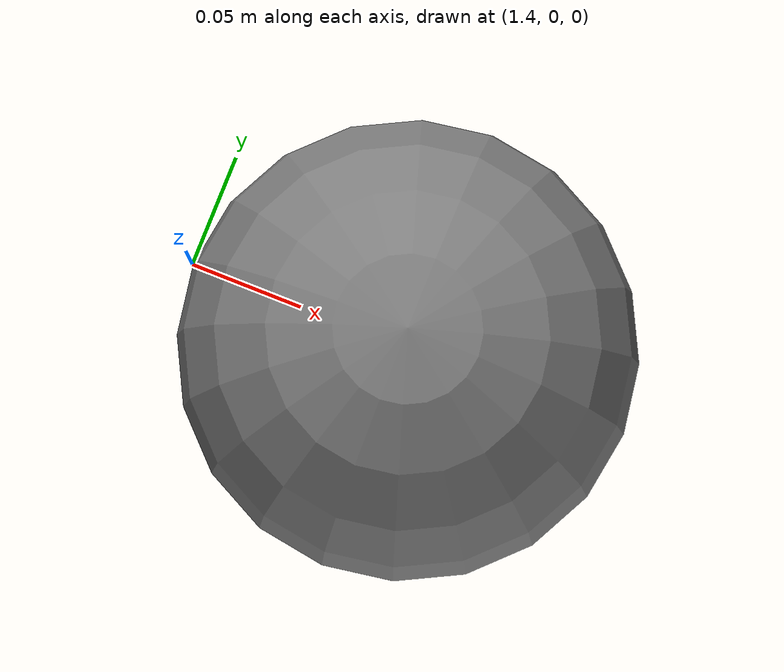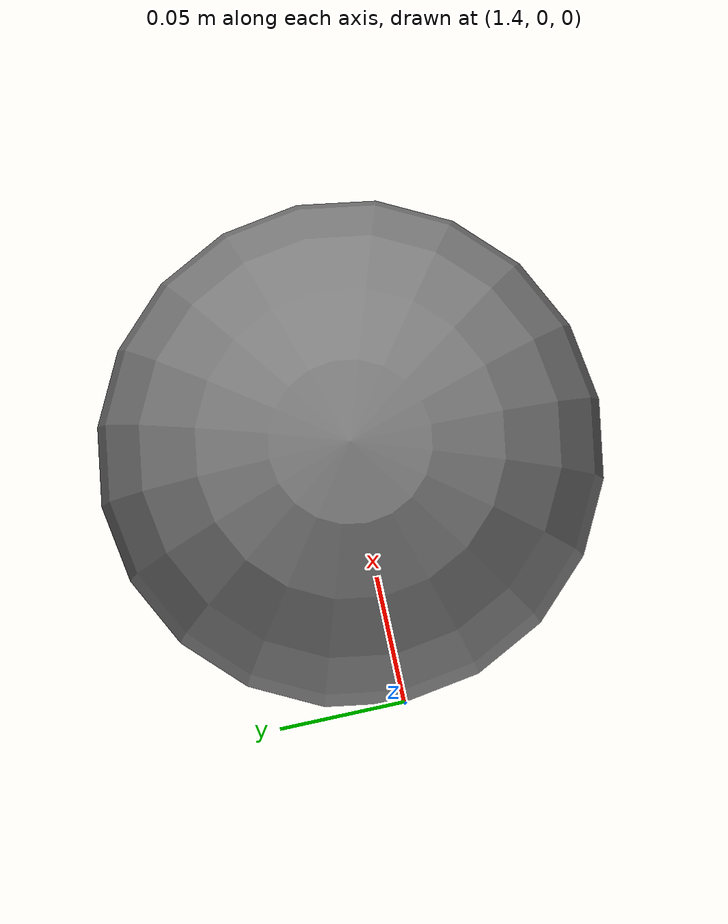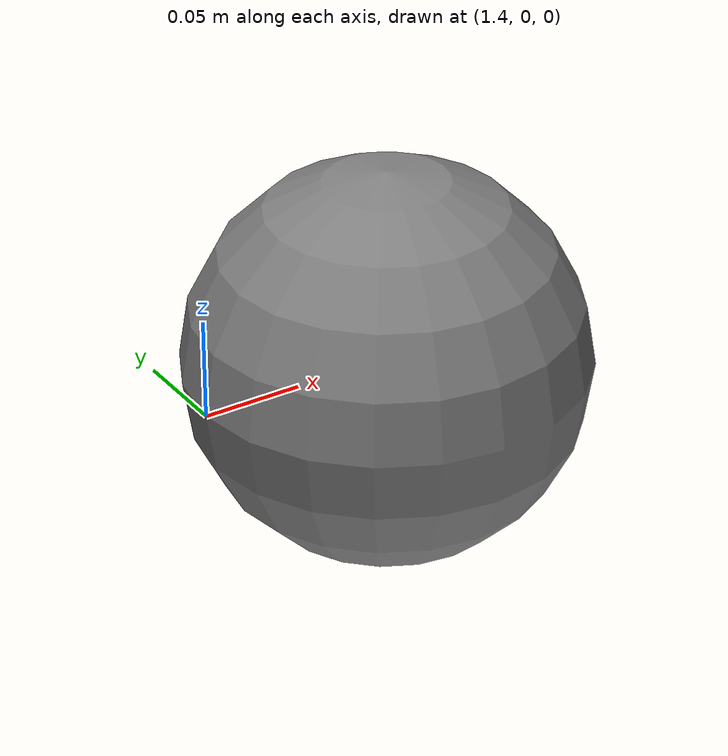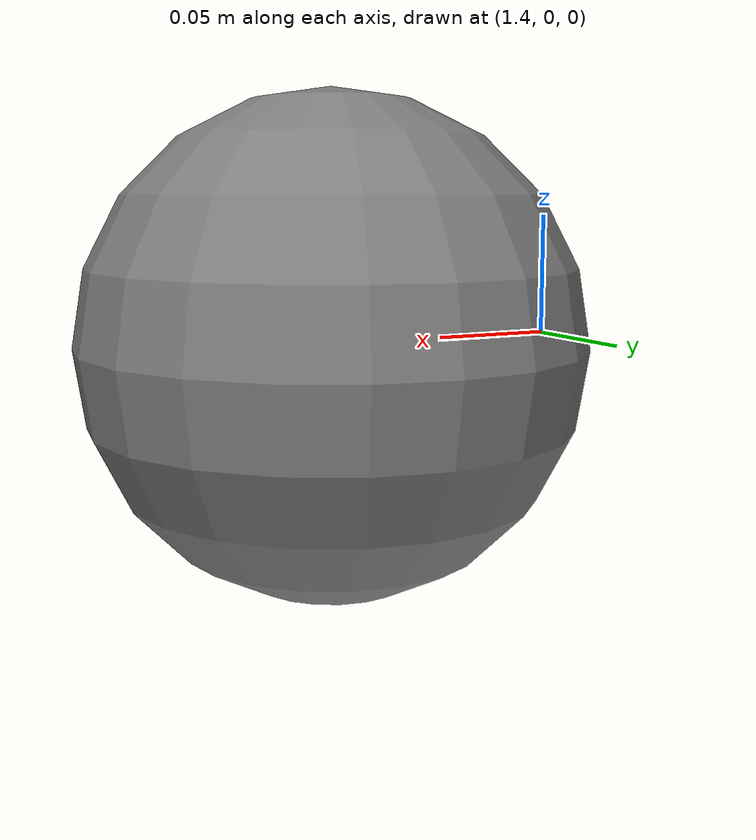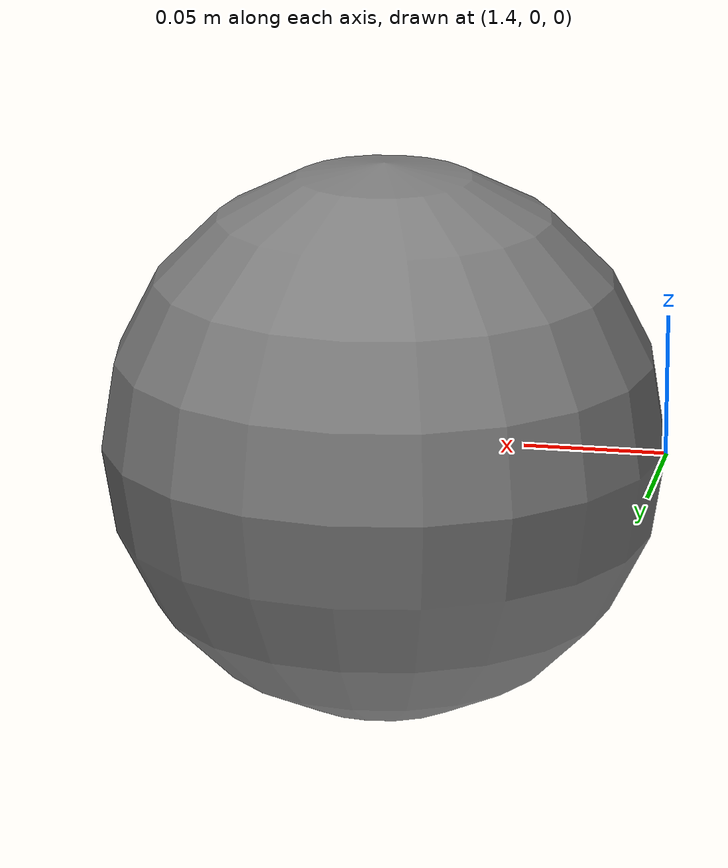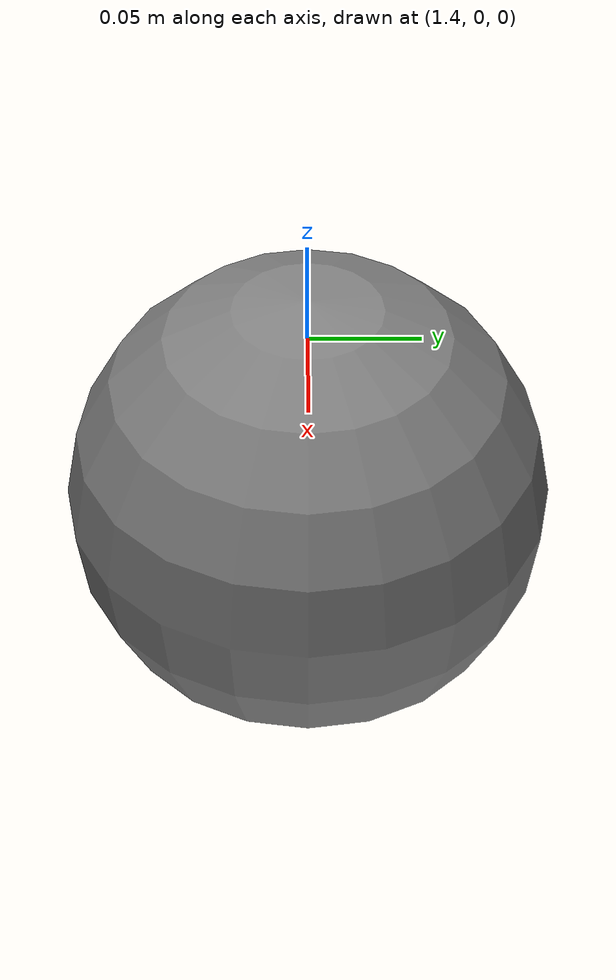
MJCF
<mujoco model="distance_no_geom2">
            <option gravity="0 0 0" timestep="0.001"/>
            <worldbody>
                <body name="b1" pos="1.5 0 0">
                    <freejoint/>
                    <geom name="g1" type="sphere" size="0.1" mass="1.0"/>
                </body>
            </worldbody>
            <equality>
                <distance geom1="g1" distance="1.5"/>
            </equality>
        </mujoco>
